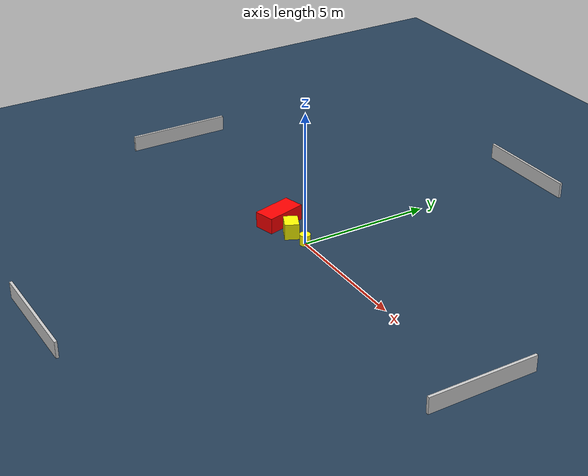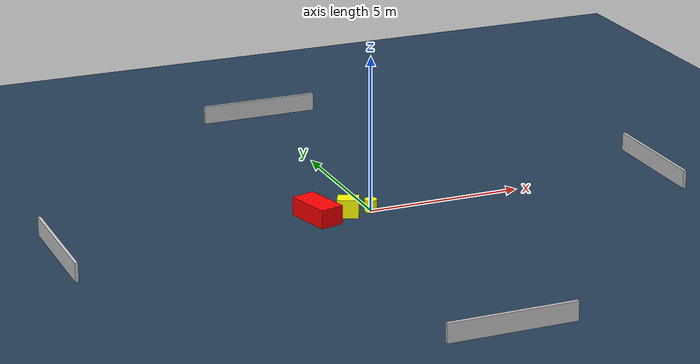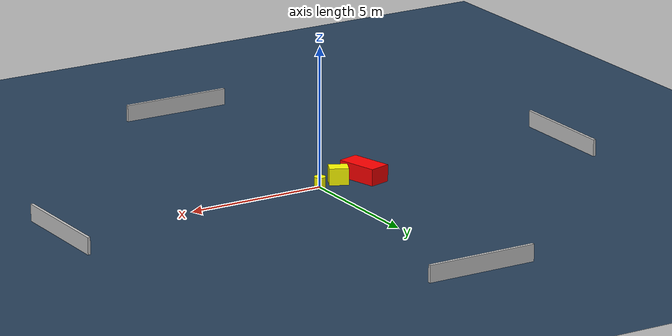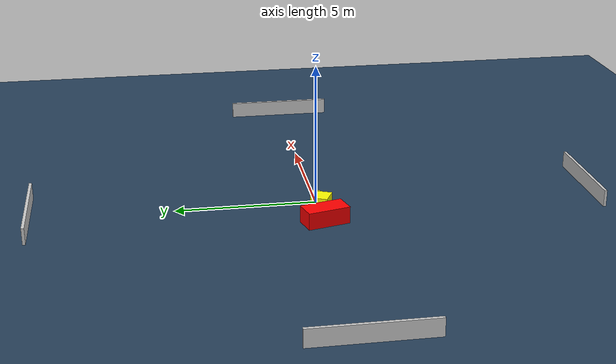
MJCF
<?xml version="1.0" ?>
<mujoco model="generated_environment">
  <option timestep="0.01" integrator="RK4" cone="elliptic"/>
  <default>
    <geom density="1"/>
  </default>
  <asset>
    <texture builtin="gradient" height="3072" name="skybox" rgb1="0.3 0.5 0.7" rgb2="0 0 0" type="skybox" width="512"/>
    <texture builtin="checker" height="300" name="groundplane" rgb1="0.2 0.3 0.4" rgb2="0.1 0.2 0.3" type="2d" width="300"/>
    <material name="groundplane" reflectance="0.2" texrepeat="5 5" texture="groundplane"/>
  </asset>
  <worldbody>
    <light dir="0 0 -1" directional="true" pos="0 0 1.5"/>
    <geom condim="3" friction="0.5 0.005 0.001" material="groundplane" name="floor" pos="0 0 0" size="0 0 0.05" type="plane"/>
    <body name="walls">
      <geom name="wall_1" condim="4" pos="-10.0 0.0 0.3" rgba="0.800000011920929 0.800000011920929 0.800000011920929 1.0" size="0.05 2.0 0.3" type="box"/>
      <geom name="wall_2" condim="4" pos="10.0 0.0 0.3" rgba="0.800000011920929 0.800000011920929 0.800000011920929 1.0" size="0.05 2.0 0.3" type="box"/>
      <geom name="wall_3" condim="4" pos="0.0 -10.0 0.3" rgba="0.800000011920929 0.800000011920929 0.800000011920929 1.0" size="2.0 0.05 0.3" type="box"/>
      <geom name="wall_4" condim="4" pos="0.0 10.0 0.3" rgba="0.800000011920929 0.800000011920929 0.800000011920929 1.0" size="2.0 0.05 0.3" type="box"/>
    </body>
    <body name="robot">
      <joint name="joint_x" type="slide" pos="0 0 0" axis="1 0 0"/>
      <joint name="joint_y" type="slide" pos="0 0 0" axis="0 1 0"/>
      <geom name="robot" type="cylinder" pos="0.0 0.0 0.2" size="0.2 0.2 0.0" mass="5.0" friction="1.0 0.005 0.0001" condim="4" rgba="1.0 1.0 0.0 1.0"/>
    </body>
    <body name="obstacle_1_movable">
      <geom name="obstacle_1_movable" condim="4" pos="-0.7973328848186461 -0.09974036591972418 0.3" euler="0 0 334.73675715058215" friction="0.0 0.005 0.001" rgba="1.0 1.0 0.0 1.0" size="0.33681079193860175 0.26147032047967816 0.3" type="box" mass="0.1"/>
      <joint type="free"/>
    </body>
    <body name="obstacle_2_static">
      <geom name="obstacle_2_static" condim="4" pos="-1.782609748431595 -0.027505367396185743 0.3" euler="0 0 284.8072616263359" friction="0.0 0.005 0.001" rgba="1.0 0.0 0.0 1.0" size="0.7620407454383467 0.3907645162138462 0.3" type="box"/>
    </body>
  </worldbody>
  <actuator>
    <motor name="actuator_x" joint="joint_x" gear="1" ctrlrange="-1 1"/>
    <motor name="actuator_y" joint="joint_y" gear="1" ctrlrange="-1 1"/>
  </actuator>
</mujoco>
